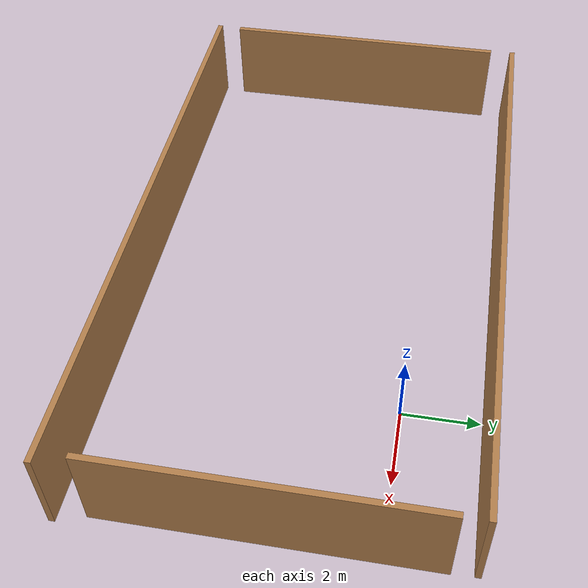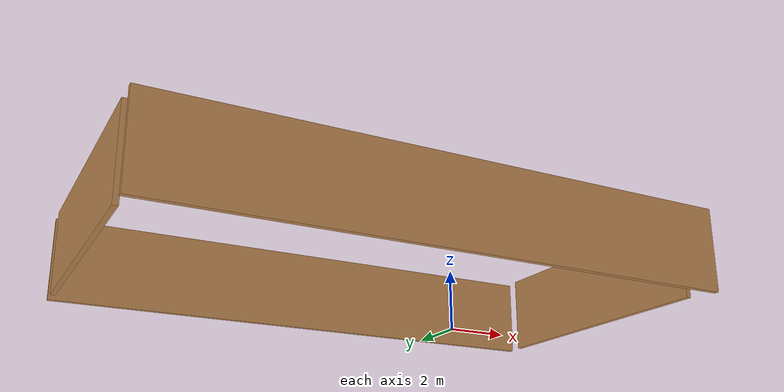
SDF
<?xml version='1.0'?>
<sdf version='1.7'>
  <model name='wall_main'>
    <pose>-4.20689 -2.68537 0 0 -0 0</pose>
    <link name='Wall_0'>
      <collision name='Wall_0_Collision'>
        <geometry>
          <box>
            <size>16.5 0.15 2.5</size>
          </box>
        </geometry>
        <pose>0 0 1.25 0 -0 0</pose>
      </collision>
      <visual name='Wall_0_Visual'>
        <pose>0 0 1.25 0 -0 0</pose>
        <geometry>
          <box>
            <size>16.5 0.15 2.5</size>
          </box>
        </geometry>
        <material>
          <script>
            <uri>file://media/materials/scripts/gazebo.material</uri>
            <name>Gazebo/Wood</name>
          </script>
          <ambient>1 1 1 1</ambient>
        </material>
        <meta>
          <layer>0</layer>
        </meta>
      </visual>
      <pose>-0.114943 4.79709 0 0 -0 0</pose>
    </link>
    <link name='Wall_2'>
      <collision name='Wall_2_Collision'>
        <geometry>
          <box>
            <size>16.75 0.15 2.5</size>
          </box>
        </geometry>
        <pose>0 0 1.25 0 -0 0</pose>
      </collision>
      <visual name='Wall_2_Visual'>
        <pose>0 0 1.25 0 -0 0</pose>
        <geometry>
          <box>
            <size>16.75 0.15 2.5</size>
          </box>
        </geometry>
        <material>
          <script>
            <uri>file://media/materials/scripts/gazebo.material</uri>
            <name>Gazebo/Wood</name>
          </script>
          <ambient>1 1 1 1</ambient>
        </material>
        <meta>
          <layer>0</layer>
        </meta>
      </visual>
      <pose>0.010057 -4.79709 0 0 -0 0</pose>
    </link>
    <link name='Wall_4'>
      <collision name='Wall_4_Collision'>
        <geometry>
          <box>
            <size>8.25 0.15 2.5</size>
          </box>
        </geometry>
        <pose>0 0 1.25 0 -0 0</pose>
      </collision>
      <visual name='Wall_4_Visual'>
        <pose>0 0 1.25 0 -0 0</pose>
        <geometry>
          <box>
            <size>8.25 0.15 2.5</size>
          </box>
        </geometry>
        <material>
          <script>
            <uri>file://media/materials/scripts/gazebo.material</uri>
            <name>Gazebo/Wood</name>
          </script>
          <ambient>1 1 1 1</ambient>
        </material>
        <meta>
          <layer>0</layer>
        </meta>
      </visual>
      <pose>-8.31006 0.002885 0 0 -0 -1.5708</pose>
    </link>
    <link name='Wall_6'>
      <collision name='Wall_6_Collision'>
        <geometry>
          <box>
            <size>8.25 0.15 2.5</size>
          </box>
        </geometry>
        <pose>0 0 1.25 0 -0 0</pose>
      </collision>
      <visual name='Wall_6_Visual'>
        <pose>0 0 1.25 0 -0 0</pose>
        <geometry>
          <box>
            <size>8.25 0.15 2.5</size>
          </box>
        </geometry>
        <material>
          <script>
            <uri>file://media/materials/scripts/gazebo.material</uri>
            <name>Gazebo/Wood</name>
          </script>
          <ambient>1 1 1 1</ambient>
        </material>
        <meta>
          <layer>0</layer>
        </meta>
      </visual>
      <pose>8.0825 0.083339 0 0 -0 -1.5708</pose>
    </link>
    <static>1</static>
  </model>
</sdf>
